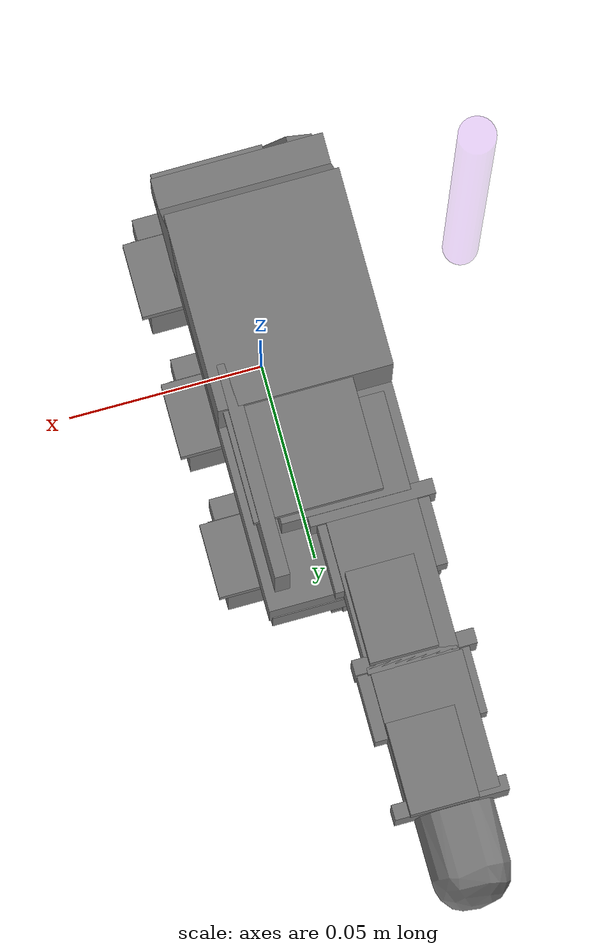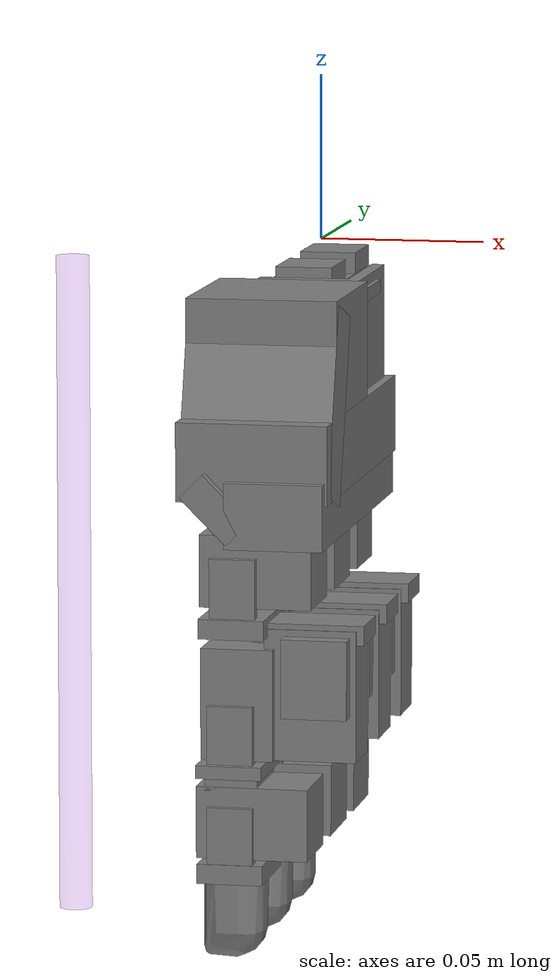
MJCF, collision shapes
<?xml version='1.0' encoding='utf-8'?>
<mujoco model="leap_rh">

  <asset>
    <material name="black" rgba="0.2 0.2 0.2 1" />

    <mesh name="palm" file="meshes/leap_hand/palm_right.stl" scale="0.85 0.85 0.85" />
    <mesh name="base" file="meshes/leap_hand/base.stl" scale="0.85 0.85 0.85" />
    <mesh name="proximal" file="meshes/leap_hand/proximal.stl" scale="0.85 0.85 0.85" />
    <mesh name="medial" file="meshes/leap_hand/medial.stl" scale="0.85 0.85 0.85" />
    <mesh name="distal" file="meshes/leap_hand/distal.stl" scale="0.85 0.85 0.85" />
    <mesh name="tip" file="meshes/leap_hand/tip.stl" scale="0.85 0.85 0.85" />
    <mesh name="thumb_base" file="meshes/leap_hand/thumb_base.stl" scale="0.85 0.85 0.85" />
    <mesh name="thumb_proximal" file="meshes/leap_hand/thumb_proximal.stl" scale="0.85 0.85 0.85" />
    <mesh name="thumb_distal" file="meshes/leap_hand/thumb_distal.stl" scale="0.85 0.85 0.85" />
    <mesh name="thumb_tip" file="meshes/leap_hand/thumb_tip.stl" scale="0.85 0.85 0.85" />
  </asset>

  <default>

   <geom solimp="0.9 0.95 0.001" solref="0.005 1" friction="0.8" />

    <position kp="3.0" />
    <joint damping="1.0" frictionloss="0.1" />

    <default class="visual">
      <geom group="1" type="mesh" contype="0" conaffinity="0" density="0" material="black" />
    </default>
    <default class="tip">
      <geom type="mesh" mesh="tip" friction="0.5" />
    </default>
    <default class="thumb_tip">
      <geom type="mesh" mesh="thumb_tip" friction="0.5" />
    </default>

    <default class="mcp">
      <joint pos="0.000000 0.000000 0.000000" axis="0 0 -1" limited="true" range="-0.314 2.23" damping="0.1" />
      <position ctrlrange="-0.314 2.23" />
    </default>
    <default class="rot">
      <joint pos="0.000000 0.000000 0.000000" axis="0 0 -1" limited="true" range="-1.047 1.047" damping="0.1" />
      <position ctrlrange="-1.047 1.047" />
    </default>
    <default class="pip">
      <joint pos="0.000000 0.000000 0.000000" axis="0 0 -1" limited="true" range="-0.506 1.885" damping="0.1" />
      <position ctrlrange="-0.506 1.885" />
    </default>
    <default class="dip">
      <joint pos="0.000000 0.000000 0.000000" axis="0 0 -1" limited="true" range="-0.366 2.042" damping="0.1" />
      <position ctrlrange="-0.366 2.042" />
    </default>
    <default class="thumb_cmc">
      <joint pos="0.000000 0.000000 0.000000" axis="0 0 -1" limited="true" range="-0.349 2.094" damping="0.1" />
      <position ctrlrange="-0.349 2.094" />
    </default>
    <default class="thumb_axl">
      <joint pos="0.000000 0.000000 0.000000" axis="0 0 -1" limited="true" range="-0.349 2.094" damping="0.1" />
      <position ctrlrange="-0.349 2.094" />
    </default>
    <default class="thumb_mcp">
      <joint pos="0.000000 0.000000 0.000000" axis="0 0 -1" limited="true" range="-0.47 2.443" damping="0.1" />
      <position ctrlrange="-0.47 2.443" />
    </default>
    <default class="thumb_ipl">
      <joint pos="0.000000 0.000000 0.000000" axis="0 0 -1" limited="true" range="-1.34 1.88" damping="0.1" />
      <position ctrlrange="-1.34 1.88" />
    </default>
  </default>

  <contact>

    <exclude body1="palm" body2="if_bs" />
    <exclude body1="palm" body2="mf_bs" />
    <exclude body1="palm" body2="rf_bs" />
    <exclude body1="palm" body2="th_mp" />

    <exclude body1="palm" body2="if_px" />
    <exclude body1="palm" body2="mf_px" />
    <exclude body1="palm" body2="rf_px" />
    <exclude body1="palm" body2="th_bs" />

    <exclude body1="palm" body2="if_md" />
    <exclude body1="palm" body2="mf_md" />
    <exclude body1="palm" body2="rf_md" />
    <exclude body1="palm" body2="th_px" />

    <exclude body1="if_bs" body2="mf_bs" />
    <exclude body1="if_bs" body2="rf_bs" />
    <exclude body1="mf_bs" body2="rf_bs" />

    <exclude body1="th_mp" body2="if_bs" />
    <exclude body1="th_mp" body2="mf_bs" />
    <exclude body1="th_mp" body2="rf_bs" />

  </contact>

  <actuator>

    <position name="if_mcp_act" joint="if_mcp" class="mcp" />
    <position name="if_rot_act" joint="if_rot" class="rot" />
    <position name="if_pip_act" joint="if_pip" class="pip" />
    <position name="if_dip_act" joint="if_dip" class="dip" />

    <position name="mf_mcp_act" joint="mf_mcp" class="mcp" />
    <position name="mf_rot_act" joint="mf_rot" class="rot" />
    <position name="mf_pip_act" joint="mf_pip" class="pip" />
    <position name="mf_dip_act" joint="mf_dip" class="dip" />

    <position name="rf_mcp_act" joint="rf_mcp" class="mcp" />
    <position name="rf_rot_act" joint="rf_rot" class="rot" />
    <position name="rf_pip_act" joint="rf_pip" class="pip" />
    <position name="rf_dip_act" joint="rf_dip" class="dip" />

    <position name="th_cmc_act" joint="th_cmc" class="thumb_cmc" />
    <position name="th_axl_act" joint="th_axl" class="thumb_axl" />
    <position name="th_mcp_act" joint="th_mcp" class="thumb_mcp" />
    <position name="th_ipl_act" joint="th_ipl" class="thumb_ipl" />
  </actuator>

  <sensor>
    <force name="force_ee" site="ft_frame" />
    <torque name="torque_ee" site="ft_frame" />

    <jointpos name="if_mcp_sensor" joint="if_mcp" />
    <jointpos name="if_rot_sensor" joint="if_rot" />
    <jointpos name="if_pip_sensor" joint="if_pip" />
    <jointpos name="if_dip_sensor" joint="if_dip" />

    <jointpos name="mf_mcp_sensor" joint="mf_mcp" />
    <jointpos name="mf_rot_sensor" joint="mf_rot" />
    <jointpos name="mf_pip_sensor" joint="mf_pip" />
    <jointpos name="mf_dip_sensor" joint="mf_dip" />

    <jointpos name="rf_mcp_sensor" joint="rf_mcp" />
    <jointpos name="rf_rot_sensor" joint="rf_rot" />
    <jointpos name="rf_pip_sensor" joint="rf_pip" />
    <jointpos name="rf_dip_sensor" joint="rf_dip" />

    <jointpos name="th_cmc_sensor" joint="th_cmc" />
    <jointpos name="th_axl_sensor" joint="th_axl" />
    <jointpos name="th_mcp_sensor" joint="th_mcp" />
    <jointpos name="th_ipl_sensor" joint="th_ipl" />
  </sensor>

  <worldbody>
    <body name="palm" pos="0.000000 0.025500 -0.102000" quat="0.7071068 0 0.7071068 0">

      <site name="ft_frame" pos="0.000000 -0.051000 0.000000" size="0.01 0.01 0.01" rgba="1 0 0 0" type="sphere" group="1" />
      <site name="grip_site" pos="0.000000 -0.068000 0.000000" size="0.01 0.01 0.01" rgba="1 0 0 0" type="sphere" group="1" />
      <site name="grip_site_cylinder" pos="0.000000 -0.068000 -0.068000" quat="0.707107 0 0.707107 0" size="0.005 .1" rgba=".627 .125 .941 .2" type="cylinder" group="1" />
      <inertial pos="-0.049542 -0.042914 -0.010227" quat="0.565586 0.427629 -0.574956 0.408254" mass="0.237" diaginertia="0.000407345 0.000304759 0.000180736" />
      <geom name="palm_visual" pos="-0.017000 0.021887 -0.029495" quat="1 0 0 0" class="visual" mesh="palm" />
      <geom name="palm_collision_1" size="0.011 0.013 0.017" pos="-0.007650 0.006800 -0.009350" type="box" />
      <geom name="palm_collision_2" size="0.011 0.013 0.017" pos="-0.007650 -0.031450 -0.009350" type="box" />
      <geom name="palm_collision_3" size="0.011 0.013 0.017" pos="-0.007650 -0.069700 -0.009350" type="box" />
      <geom name="palm_collision_4" size="0.029 0.01 0.023" pos="-0.056100 -0.066300 -0.009775" quat="0.989016 0 0 -0.147806" type="box" />
      <geom name="palm_collision_5" size="0.01 0.06 0.015" pos="-0.025500 -0.029750 -0.002550" type="box" />
      <geom name="palm_collision_6" size="0.005 0.06 0.01" pos="-0.027200 -0.029750 -0.020400" quat="0.923956 0 0.382499 0" type="box" />
      <geom name="palm_collision_7" size="0.012 0.058 0.023" pos="-0.040800 -0.028050 -0.009775" type="box" />
      <geom name="palm_collision_8" size="0.022 0.026 0.023" pos="-0.066300 -0.045050 -0.009775" type="box" />
      <geom name="palm_collision_9" size="0.002 0.018 0.017" pos="-0.083300 -0.007650 -0.005100" type="box" />
      <geom name="palm_collision_10" size="0.022 0.028 0.002" pos="-0.066300 -0.002550 0.008500" type="box" />

      <body name="if_bs" pos="-0.005950 0.019550 -0.015895" quat="0.500003 0.5 0.5 -0.499997">
        <inertial pos="-0.022516 0.033882 0.016359" quat="0.388092 0.677951 -0.247713 0.573067" mass="0.044" diaginertia="1.74972e-05 1.61504e-05 7.21342e-06" />
        <joint name="if_mcp" class="mcp" />
        <geom name="if_bs_visual" pos="0.007140 0.006545 0.012453" quat="1 0 0 0" class="visual" mesh="base" />
        <geom name="if_bs_collision_1" size="0.01 0.003 0.017" pos="0.000000 0.015300 0.012495" type="box" />
        <geom name="if_bs_collision_2" size="0.014 0.02 0.01" pos="-0.022950 0.035700 0.012750" type="box" />
        <geom name="if_bs_collision_3" size="0.017 0.003 0.01" pos="-0.022270 0.017000 0.012410" type="box" />
        <geom name="if_bs_collision_4" size="0.01 0.012 0.004" pos="-0.025075 0.029750 0.024650" type="box" />
        <geom name="if_bs_collision_5" size="0.007 0.01 0.002" pos="0.000000 0.004250 0.025500" type="box" />
        <geom name="if_bs_collision_6" size="0.007 0.01 0.002" pos="0.000000 0.004250 -0.000850" type="box" />

        <body name="if_px" pos="-0.010370 0.032385 0.012325" quat="0.500003 -0.5 -0.499997 0.5">
          <inertial pos="0.0075 -0.0002 -0.011" quat="0 0.707107 0 0.707107" mass="0.032" diaginertia="4.8853e-06 4.3733e-06 3.0933e-06" />
          <joint name="if_rot" class="rot" />
          <geom name="if_px_visual" pos="0.008160 0.000170 0.000595" quat="0.500003 -0.5 -0.5 -0.499997" class="visual" mesh="proximal" />
          <geom name="if_px_collision" size="0.017 0.013 0.011" pos="0.006375 -0.000170 -0.009350" type="box" />

          <body name="if_md" pos="0.012750 0.012155 -0.011050" quat="0.500003 0.5 -0.5 0.499997">
            <inertial pos="0.0054215 -0.029148 0.015" quat="0.687228 0.687228 0.166487 0.166487" mass="0.037" diaginertia="8.28004e-06 8.1598e-06 5.39516e-06" />
            <joint name="if_pip" class="pip" />
            <geom name="if_md_visual" pos="0.017935 -0.007140 0.008245" quat="2.67949e-08 -1 0 0" class="visual" mesh="medial" />
            <geom name="if_md_collision_1" size="0.008 0.003 0.013" pos="0.000000 -0.017000 0.012750" type="box" />
            <geom name="if_md_collision_2" size="0.01 0.002 0.017" pos="0.000000 -0.013600 0.012750" type="box" />
            <geom name="if_md_collision_3" size="0.007 0.01 0.002" pos="0.000000 -0.003825 0.025500" type="box" />
            <geom name="if_md_collision_4" size="0.007 0.01 0.002" pos="0.000000 -0.003825 0.000000" type="box" />
            <geom name="if_md_collision_5" size="0.017 0.011 0.013" pos="0.006375 -0.029750 0.012750" type="box" />

            <body name="if_ds" pos="0.000000 -0.030685 0.000170">
              <inertial pos="-0.0008794 -0.027019 0.014594" quat="0.702905 0.710643 -0.0212937 -0.0214203" mass="0.016" diaginertia="3.71863e-06 3.02396e-06 1.6518e-06" />
              <joint name="if_dip" class="dip" />
              <geom name="if_ds_visual" pos="0.011220 -0.005185 0.012240" quat="2.67949e-08 1 0 0" class="visual" mesh="distal" />
              <geom name="if_ds_collision_1" size="0.01 0.003 0.015" pos="0.000000 -0.014450 0.012750" type="box" />
              <geom name="if_ds_collision_2" size="0.007 0.011 0.002" pos="0.000000 -0.005100 0.025500" type="box" />
              <geom name="if_ds_collision_3" size="0.007 0.011 0.002" pos="0.000000 -0.005100 -0.000850" type="box" />

              <geom name="if_tip" class="tip" />
            </body>

          </body>
        </body>
      </body>

      <body name="mf_bs" pos="-0.006035 -0.019040 -0.015895" quat="0.500003 0.5 0.5 -0.499997">
        <inertial pos="-0.022516 0.033882 0.016359" quat="0.388092 0.677951 -0.247713 0.573067" mass="0.044" diaginertia="1.74972e-05 1.61504e-05 7.21342e-06" />
        <joint name="mf_mcp" class="mcp" />
        <geom name="mf_bs_visual" pos="0.007140 0.006545 0.012453" quat="1 0 0 0" class="visual" mesh="base" />
        <geom name="mf_bs_collision_1" size="0.01 0.003 0.017" pos="0.000000 0.015300 0.012495" type="box" />
        <geom name="mf_bs_collision_2" size="0.014 0.02 0.01" pos="-0.022950 0.035700 0.012750" type="box" />
        <geom name="mf_bs_collision_3" size="0.017 0.003 0.01" pos="-0.022270 0.017000 0.012410" type="box" />
        <geom name="mf_bs_collision_4" size="0.01 0.012 0.004" pos="-0.025075 0.029750 0.024650" type="box" />
        <geom name="mf_bs_collision_5" size="0.007 0.01 0.002" pos="0.000000 0.004250 0.025500" type="box" />
        <geom name="mf_bs_collision_6" size="0.007 0.01 0.002" pos="0.000000 0.004250 -0.000850" type="box" />

        <body name="mf_px" pos="-0.010370 0.032385 0.012325" quat="0.500003 -0.5 -0.499997 0.5">
          <inertial pos="0.0075 -0.0002 -0.011" quat="0 0.707107 0 0.707107" mass="0.032" diaginertia="4.8853e-06 4.3733e-06 3.0933e-06" />
          <joint name="mf_rot" class="rot" />
          <geom name="mf_px_visual" pos="0.008160 0.000255 0.000595" quat="0.500003 -0.5 -0.5 -0.499997" class="visual" mesh="proximal" />
          <geom name="mf_px_collision" size="0.017 0.013 0.011" pos="0.006375 -0.000170 -0.009350" type="box" />

          <body name="mf_md" pos="0.012750 0.012155 -0.011050" quat="0.500003 0.5 -0.5 0.499997">
            <inertial pos="0.0054215 -0.029148 0.015" quat="0.687228 0.687228 0.166487 0.166487" mass="0.037" diaginertia="8.28004e-06 8.1598e-06 5.39516e-06" />
            <joint name="mf_pip" class="pip" />
            <geom name="mf_md_visual" pos="0.017935 -0.007140 0.008245" quat="1.32679e-06 -1 0 0" class="visual" mesh="medial" />
            <geom name="mf_md_collision_1" size="0.008 0.003 0.013" pos="0.000000 -0.017000 0.012750" type="box" />
            <geom name="mf_md_collision_2" size="0.01 0.002 0.017" pos="0.000000 -0.013600 0.012750" type="box" />
            <geom name="mf_md_collision_3" size="0.007 0.01 0.002" pos="0.000000 -0.003825 0.025500" type="box" />
            <geom name="mf_md_collision_4" size="0.007 0.01 0.002" pos="0.000000 -0.003825 0.000000" type="box" />
            <geom name="mf_md_collision_5" size="0.017 0.011 0.013" pos="0.006375 -0.029750 0.012750" type="box" />

            <body name="mf_ds" pos="0.000000 -0.030685 0.000170">
              <inertial pos="-0.0008794 -0.027019 0.014594" quat="0.702905 0.710643 -0.0212937 -0.0214203" mass="0.016" diaginertia="3.71863e-06 3.02396e-06 1.6518e-06" />
              <joint name="mf_dip" class="dip" />
              <geom name="mf_ds_visual" pos="0.011220 -0.005185 0.012325" quat="1.32679e-06 1 0 0" class="visual" mesh="distal" />
              <geom name="mf_ds_collision_1" size="0.01 0.003 0.015" pos="0.000000 -0.014450 0.012750" type="box" />
              <geom name="mf_ds_collision_2" size="0.007 0.011 0.002" pos="0.000000 -0.005100 0.025500" type="box" />
              <geom name="mf_ds_collision_3" size="0.007 0.011 0.002" pos="0.000000 -0.005100 -0.000850" type="box" />

              <geom name="mf_tip" class="tip" />
            </body>

          </body>
        </body>
      </body>

      <body name="rf_bs" pos="-0.006026 -0.057630 -0.015895" quat="0.500003 0.5 0.5 -0.499997">
        <inertial pos="-0.022516 0.033882 0.016359" quat="0.388092 0.677951 -0.247713 0.573067" mass="0.044" diaginertia="1.74972e-05 1.61504e-05 7.21342e-06" />
        <joint name="rf_mcp" class="mcp" />
        <geom name="rf_bs_visual" pos="0.007140 0.006545 0.012453" quat="1 0 0 0" class="visual" mesh="base" />
        <geom name="rf_bs_collision_1" size="0.01 0.003 0.017" pos="0.000000 0.015300 0.012495" type="box" />
        <geom name="rf_bs_collision_2" size="0.014 0.02 0.01" pos="-0.022950 0.035700 0.012750" type="box" />
        <geom name="rf_bs_collision_3" size="0.017 0.003 0.01" pos="-0.022270 0.017000 0.012410" type="box" />
        <geom name="rf_bs_collision_4" size="0.01 0.012 0.004" pos="-0.025075 0.029750 0.024650" type="box" />
        <geom name="rf_bs_collision_5" size="0.007 0.01 0.002" pos="0.000000 0.004250 0.025500" type="box" />
        <geom name="rf_bs_collision_6" size="0.007 0.01 0.002" pos="0.000000 0.004250 -0.000850" type="box" />

        <body name="rf_px" pos="-0.010370 0.032385 0.012325" quat="0.500003 -0.5 -0.499997 0.5">
          <inertial pos="0.0075 -0.0002 -0.011" quat="0 0.707107 0 0.707107" mass="0.032" diaginertia="4.8853e-06 4.3733e-06 3.0933e-06" />
          <joint name="rf_rot" class="rot" />
          <geom name="rf_px_visual" pos="0.008160 0.000255 0.000595" quat="0.500003 -0.5 -0.5 -0.499997" class="visual" mesh="proximal" />
          <geom name="rf_px_collision" size="0.017 0.013 0.011" pos="0.006375 -0.000170 -0.009350" type="box" />

          <body name="rf_md" pos="0.012750 0.012155 -0.011050" quat="0.500003 0.5 -0.5 0.499997">
            <inertial pos="0.0054215 -0.029148 0.015" quat="0.687228 0.687228 0.166487 0.166487" mass="0.037" diaginertia="8.28004e-06 8.1598e-06 5.39516e-06" />
            <joint name="rf_pip" class="pip" />
            <geom name="rf_md_visual" pos="0.017935 -0.007140 0.008245" quat="1.32679e-06 -1 0 0" class="visual" mesh="medial" />
            <geom name="rf_md_collision_1" size="0.008 0.003 0.013" pos="0.000000 -0.017000 0.012750" type="box" />
            <geom name="rf_md_collision_2" size="0.01 0.002 0.017" pos="0.000000 -0.013600 0.012750" type="box" />
            <geom name="rf_md_collision_3" size="0.007 0.01 0.002" pos="0.000000 -0.003825 0.025500" type="box" />
            <geom name="rf_md_collision_4" size="0.007 0.01 0.002" pos="0.000000 -0.003825 0.000000" type="box" />
            <geom name="rf_md_collision_5" size="0.017 0.011 0.013" pos="0.006375 -0.029750 0.012750" type="box" />

            <body name="rf_ds" pos="0.000000 -0.030676 0.000170">
              <inertial pos="-0.0008794 -0.027019 0.014594" quat="0.702905 0.710643 -0.0212937 -0.0214203" mass="0.016" diaginertia="3.71863e-06 3.02396e-06 1.6518e-06" />
              <joint name="rf_dip" class="dip" />
              <geom name="rf_ds_visual" pos="0.011220 -0.005185 0.012325" quat="1.32679e-06 1 0 0" class="visual" mesh="distal" />
              <geom name="rf_ds_collision_1" size="0.01 0.003 0.015" pos="0.000000 -0.014450 0.012750" type="box" />
              <geom name="rf_ds_collision_2" size="0.007 0.011 0.002" pos="0.000000 -0.005100 0.025500" type="box" />
              <geom name="rf_ds_collision_3" size="0.007 0.011 0.002" pos="0.000000 -0.005100 -0.000850" type="box" />

              <geom name="rf_tip" class="tip" />
            </body>

          </body>
        </body>
      </body>

      <body name="th_mp" pos="-0.058905 -0.001020 -0.018360" quat="0.707109 0 0.707105 0">
        <inertial pos="0.0075 -0.0002 -0.011" quat="0 0.707107 0 0.707107" mass="0.032" diaginertia="4.8853e-06 4.3733e-06 3.0933e-06" />
        <joint name="th_cmc" class="thumb_cmc" />
        <geom name="th_mp_visual" pos="-0.004505 0.000255 0.000663" quat="0.500003 -0.5 -0.5 -0.499997" class="visual" mesh="proximal" />
        <geom name="th_mp_collision" size="0.017 0.013 0.011" pos="-0.006375 -0.000170 -0.009350" type="box" />

        <body name="th_bs" pos="0.000000 0.012155 -0.011050" quat="0.500003 0.5 -0.5 0.499997">
          <inertial pos="0 0 -0.0070806" quat="0.707107 0.707107 0 0" mass="0.003" diaginertia="6.1932e-07 5.351e-07 2.1516e-07" />
          <joint name="th_axl" class="thumb_axl" />
          <geom name="th_bs_visual" pos="0.010166 0.000000 -0.013430" quat="0.707109 0.707105 0 0" class="visual" mesh="thumb_base" />
          <geom name="th_bs_collision_1" size="0.009 0.0165 0.002" pos="0.000000 0.000000 -0.001275" type="box" />
          <geom name="th_bs_collision_2" size="0.007 0.002 0.01" pos="0.000000 -0.012750 -0.011050" type="box" />
          <geom name="th_bs_collision_3" size="0.007 0.002 0.01" pos="0.000000 0.012750 -0.011050" type="box" />

          <body name="th_px" pos="0.000000 0.012325 -0.014450" quat="0.707109 -0.707105 0 0">
            <inertial pos="-0.0020593 0.015912 -0.013733" quat="0.698518 0.697382 -0.104933 0.121324" mass="0.038" diaginertia="9.87104e-06 9.32653e-06 4.36203e-06" />
            <joint name="th_mcp" class="thumb_mcp" />
            <geom name="th_px_visual" pos="0.037315 0.049215 -0.007310" quat="1 0 0 0" class="visual" mesh="thumb_proximal" />
            <geom name="th_px_collision_1" size="0.01 0.02 0.012" pos="0.000000 0.008925 -0.011900" type="box" />
            <geom name="th_px_collision_2" size="0.01 0.002 0.016" pos="0.000000 0.026350 -0.012750" type="box" />
            <geom name="th_px_collision_3" size="0.007 0.01 0.002" pos="0.000000 0.035700 0.000850" type="box" />
            <geom name="th_px_collision_4" size="0.007 0.01 0.002" pos="0.000000 0.035700 -0.024650" type="box" />
            <geom name="th_px_collision_5" size="0.005 0.012 0.009" pos="-0.011475 0.014875 -0.009908" type="box" />

            <body name="th_ds" pos="0.000000 0.039610 0.000170" quat="1.32679e-06 0 0 1">
              <inertial pos="0.00096191 -0.024203 -0.014419" quat="0.35287 0.311272 -0.632839 0.614904" mass="0.049" diaginertia="2.08591e-05 2.0402e-05 4.71335e-06" />
              <joint name="th_ipl" class="thumb_ipl" />
              <geom name="th_ds_visual" pos="0.053125 0.066640 0.041565" quat="1 0 0 0" class="visual" mesh="thumb_distal" />
              <geom name="th_ds_collision_1" size="0.01 0.018 0.012" pos="0.000000 -0.007225 -0.012750" type="box" />
              <geom name="th_ds_collision_2" size="0.01 0.002 0.015" pos="0.000000 -0.024650 -0.011900" type="box" />
              <geom name="th_ds_collision_3" size="0.004 0.012 0.009" pos="0.012750 -0.014875 -0.009775" type="box" />

              <geom name="th_tip" class="thumb_tip" />
            </body>

          </body>
        </body>
      </body>

    </body>
  </worldbody>
</mujoco>
